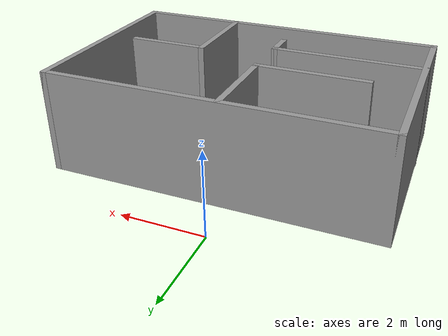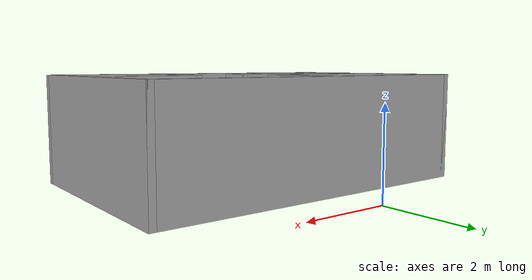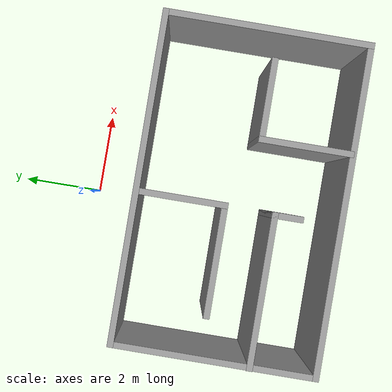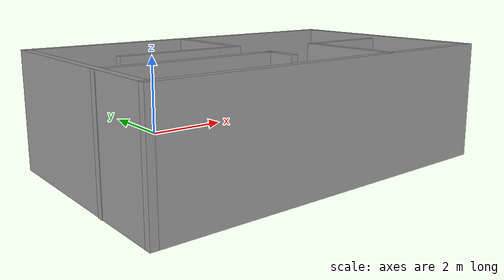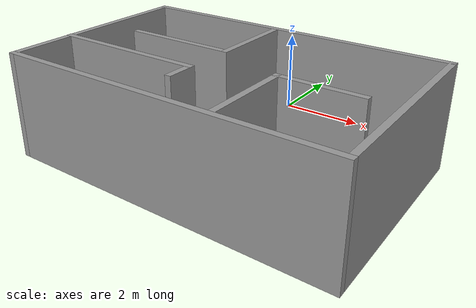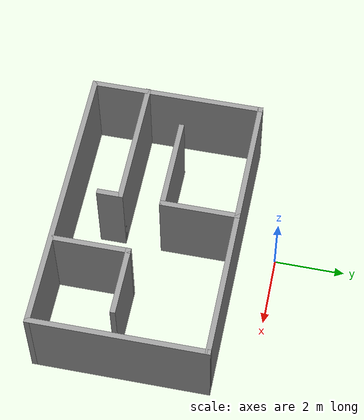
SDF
<?xml version='1.0'?>
<sdf version='1.7'>
  <model name='room'>
    <pose>0.479004 -3.0225 0 0 -0 0</pose>
    <link name='Wall_0'>
      <collision name='Wall_0_Collision'>
        <geometry>
          <box>
            <size>8 0.15 2.5</size>
          </box>
        </geometry>
        <pose>0 0 1.25 0 -0 0</pose>
      </collision>
      <visual name='Wall_0_Visual'>
        <pose>0 0 1.25 0 -0 0</pose>
        <geometry>
          <box>
            <size>8 0.15 2.5</size>
          </box>
        </geometry>
        <material>
          <script>
            <uri>file://media/materials/scripts/gazebo.material</uri>
            <name>Gazebo/Grey</name>
          </script>
          <ambient>1 1 1 1</ambient>
        </material>
        <meta>
          <layer>0</layer>
        </meta>
      </visual>
      <pose>0.005996 1.9025 0 0 -0 0</pose>
    </link>
    <link name='Wall_11'>
      <collision name='Wall_11_Collision'>
        <geometry>
          <box>
            <size>2.25 0.15 2.5</size>
          </box>
        </geometry>
        <pose>0 0 1.25 0 -0 0</pose>
      </collision>
      <visual name='Wall_11_Visual'>
        <pose>0 0 1.25 0 -0 0</pose>
        <geometry>
          <box>
            <size>2.25 0.15 2.5</size>
          </box>
        </geometry>
        <material>
          <script>
            <uri>file://media/materials/scripts/gazebo.material</uri>
            <name>Gazebo/Grey</name>
          </script>
          <ambient>1 1 1 1</ambient>
        </material>
        <meta>
          <layer>0</layer>
        </meta>
      </visual>
      <pose>-0.296105 0.849453 0 0 -0 -1.5708</pose>
    </link>
    <link name='Wall_12'>
      <collision name='Wall_12_Collision'>
        <geometry>
          <box>
            <size>2.75 0.15 2.5</size>
          </box>
        </geometry>
        <pose>0 0 1.25 0 -0 0</pose>
      </collision>
      <visual name='Wall_12_Visual'>
        <pose>0 0 1.25 0 -0 0</pose>
        <geometry>
          <box>
            <size>2.75 0.15 2.5</size>
          </box>
        </geometry>
        <material>
          <script>
            <uri>file://media/materials/scripts/gazebo.material</uri>
            <name>Gazebo/Grey</name>
          </script>
          <ambient>1 1 1 1</ambient>
        </material>
        <meta>
          <layer>0</layer>
        </meta>
      </visual>
      <pose>-1.59611 -0.200547 0 0 -0 3.14159</pose>
    </link>
    <link name='Wall_14'>
      <collision name='Wall_14_Collision'>
        <geometry>
          <box>
            <size>3.75 0.15 2.5</size>
          </box>
        </geometry>
        <pose>0 0 1.25 0 -0 0</pose>
      </collision>
      <visual name='Wall_14_Visual'>
        <pose>0 0 1.25 0 -0 0</pose>
        <geometry>
          <box>
            <size>3.75 0.15 2.5</size>
          </box>
        </geometry>
        <material>
          <script>
            <uri>file://media/materials/scripts/gazebo.material</uri>
            <name>Gazebo/Grey</name>
          </script>
          <ambient>1 1 1 1</ambient>
        </material>
        <meta>
          <layer>0</layer>
        </meta>
      </visual>
      <pose>-2.131 -1.38564 0 0 -0 0</pose>
    </link>
    <link name='Wall_15'>
      <collision name='Wall_15_Collision'>
        <geometry>
          <box>
            <size>0.75 0.15 2.5</size>
          </box>
        </geometry>
        <pose>0 0 1.25 0 -0 0</pose>
      </collision>
      <visual name='Wall_15_Visual'>
        <pose>0 0 1.25 0 -0 0</pose>
        <geometry>
          <box>
            <size>0.75 0.15 2.5</size>
          </box>
        </geometry>
        <material>
          <script>
            <uri>file://media/materials/scripts/gazebo.material</uri>
            <name>Gazebo/Grey</name>
          </script>
          <ambient>1 1 1 1</ambient>
        </material>
        <meta>
          <layer>0</layer>
        </meta>
      </visual>
      <pose>-0.330997 -1.68564 0 0 -0 -1.5708</pose>
    </link>
    <link name='Wall_17'>
      <collision name='Wall_17_Collision'>
        <geometry>
          <box>
            <size>2.25 0.15 2.5</size>
          </box>
        </geometry>
        <pose>0 0 1.25 0 -0 0</pose>
      </collision>
      <visual name='Wall_17_Visual'>
        <pose>0 0 1.25 0 -0 0</pose>
        <geometry>
          <box>
            <size>2.25 0.15 2.5</size>
          </box>
        </geometry>
        <material>
          <script>
            <uri>file://media/materials/scripts/gazebo.material</uri>
            <name>Gazebo/Grey</name>
          </script>
          <ambient>1 1 1 1</ambient>
        </material>
        <meta>
          <layer>0</layer>
        </meta>
      </visual>
      <pose>1.36165 -1.8413 0 0 -0 1.5708</pose>
    </link>
    <link name='Wall_18'>
      <collision name='Wall_18_Collision'>
        <geometry>
          <box>
            <size>2 0.15 2.5</size>
          </box>
        </geometry>
        <pose>0 0 1.25 0 -0 0</pose>
      </collision>
      <visual name='Wall_18_Visual'>
        <pose>0 0 1.25 0 -0 0</pose>
        <geometry>
          <box>
            <size>2 0.15 2.5</size>
          </box>
        </geometry>
        <material>
          <script>
            <uri>file://media/materials/scripts/gazebo.material</uri>
            <name>Gazebo/Grey</name>
          </script>
          <ambient>1 1 1 1</ambient>
        </material>
        <meta>
          <layer>0</layer>
        </meta>
      </visual>
      <pose>2.28665 -0.791303 0 0 -0 0</pose>
    </link>
    <link name='Wall_7'>
      <collision name='Wall_7_Collision'>
        <geometry>
          <box>
            <size>5 0.15 2.5</size>
          </box>
        </geometry>
        <pose>0 0 1.25 0 -0 0</pose>
      </collision>
      <visual name='Wall_7_Visual'>
        <pose>0 0 1.25 0 -0 0</pose>
        <geometry>
          <box>
            <size>5 0.15 2.5</size>
          </box>
        </geometry>
        <material>
          <script>
            <uri>file://media/materials/scripts/gazebo.material</uri>
            <name>Gazebo/Grey</name>
          </script>
          <ambient>1 1 1 1</ambient>
        </material>
        <meta>
          <layer>0</layer>
        </meta>
      </visual>
      <pose>3.931 -0.5225 0 0 -0 -1.5708</pose>
    </link>
    <link name='Wall_8'>
      <collision name='Wall_8_Collision'>
        <geometry>
          <box>
            <size>8 0.15 2.5</size>
          </box>
        </geometry>
        <pose>0 0 1.25 0 -0 0</pose>
      </collision>
      <visual name='Wall_8_Visual'>
        <pose>0 0 1.25 0 -0 0</pose>
        <geometry>
          <box>
            <size>8 0.15 2.5</size>
          </box>
        </geometry>
        <material>
          <script>
            <uri>file://media/materials/scripts/gazebo.material</uri>
            <name>Gazebo/Grey</name>
          </script>
          <ambient>1 1 1 1</ambient>
        </material>
        <meta>
          <layer>0</layer>
        </meta>
      </visual>
      <pose>0.005996 -2.9475 0 0 -0 3.14159</pose>
    </link>
    <link name='Wall_9'>
      <collision name='Wall_9_Collision'>
        <geometry>
          <box>
            <size>5 0.15 2.5</size>
          </box>
        </geometry>
        <pose>0 0 1.25 0 -0 0</pose>
      </collision>
      <visual name='Wall_9_Visual'>
        <pose>0 0 1.25 0 -0 0</pose>
        <geometry>
          <box>
            <size>5 0.15 2.5</size>
          </box>
        </geometry>
        <material>
          <script>
            <uri>file://media/materials/scripts/gazebo.material</uri>
            <name>Gazebo/Grey</name>
          </script>
          <ambient>1 1 1 1</ambient>
        </material>
        <meta>
          <layer>0</layer>
        </meta>
      </visual>
      <pose>-3.919 -0.5225 0 0 -0 1.5708</pose>
    </link>
    <static>1</static>
  </model>
</sdf>
